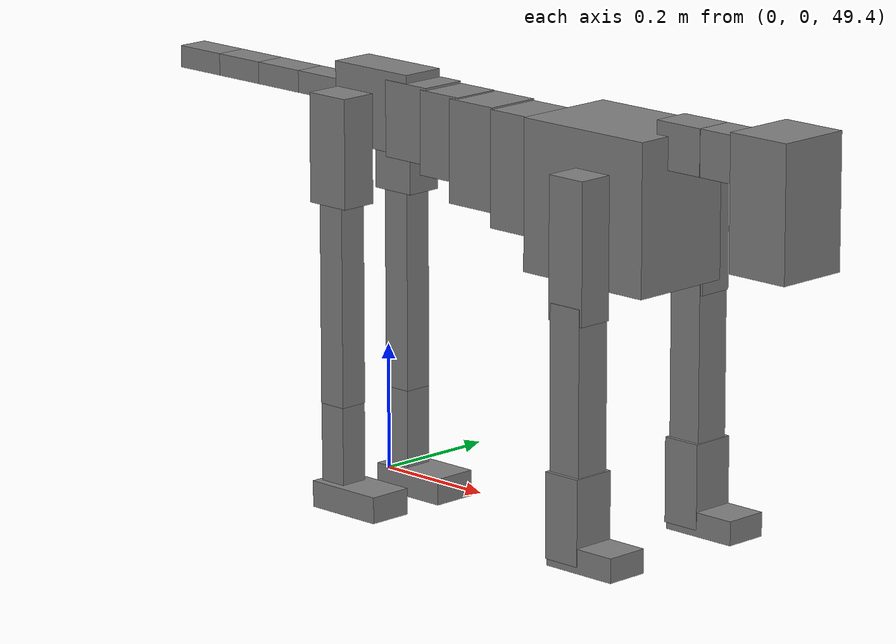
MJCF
<mujoco model="dog">

    <default>
        <joint armature="0.02" stiffness="1" damping="0.2" limited="true"/>
        <geom condim="3" friction="1 0.05 0.05" margin="0.01"/>
        <motor ctrllimited="true" ctrlrange="-1.0 1.0" forcelimited="true" gear="50"/>
    </default>

    <compiler inertiafromgeom="true" angle="radian"/>

    <option timestep="0.016" iterations="50" tolerance="1e-10" solver="Newton" jacobian="dense" cone="pyramidal"/>

    <size nconmax="20000" njmax="60000" nstack="5000000"/>
    <visual>
        <map force="0.1" zfar="30"/>
        <rgba haze="0.15 0.25 0.35 1"/>
        <quality shadowsize="2048"/>
        <global offwidth="800" offheight="800"/>
    </visual>

    <asset>
        <texture type="skybox" builtin="gradient" rgb1="0.3 0.5 0.7" rgb2="0 0 0" width="512" height="512"/>
        <texture name="texplane" type="2d" builtin="checker" rgb1=".2 .3 .4" rgb2=".1 0.15 0.2" width="512" height="512"
                 mark="cross" markrgb=".8 .8 .8"/>
        <texture name="texgeom" type="cube" builtin="flat" mark="cross" width="127" height="1278" rgb1="0.8 0.6 0.4"
                 rgb2="0.8 0.6 0.4" markrgb="1 1 1" random="0.01"/>

        <material name="matplane" reflectance="0.3" texture="texplane" texrepeat="1 1" texuniform="true"/>
        <material name="matgeom" texture="texgeom" texuniform="true" rgba="0.8 0.6 .4 1"/>
    </asset>

    <worldbody>
        <geom name="floor" pos="0 0 0" size="0 0 .25" type="plane" material="matplane" condim="3"/>

        <light directional="false" diffuse=".2 .2 .2" specular="0 0 0" pos="0 0 5" dir="0 0 -1" castshadow="false"/>
        <light mode="targetbodycom" target="torso" directional="false" diffuse=".8 .8 .8" specular="0.3 0.3 0.3"
               pos="0 0 4.0" dir="0 0 -1"/>

        <body name="root" pos="0 0 50">
            <freejoint name="root_1"/>
            <geom type="box" pos="0 0 -0.02" size="0.0774  0.0358  0.063" density="2030"/>

            <body name="spine1" pos="0.054 0 0">
                <joint name="spine1_y" axis="0 1 0" range="0 0.7" limited="true"/>
                <geom type="box" pos="0.02375 0 -0.03" size="0.04375  0.0375  0.05985" density="2030"/>

                <body name="spine2" pos="0.0612 0 0">
                    <joint name="spine2_y" axis="0 1 0" range="-0.15 0.15" limited="true"/>
                    <geom type="box" pos="0.03555  0  -0.04" size="0.04055  0.039  0.06615" density="2030"/>

                    <body name="spine3" pos="0.0730 0 0">
                        <joint name="spine3_y" axis="0 1 0" range="-0.15 0.15" limited="true"/>
                        <geom type="box" pos="0.03555  0  -0.057" size="0.04555  0.0445  0.081" density="2030"/>

                        <body name="spine4" pos="0.0780 0 0">
                            <joint name="spine4_y" axis="0 1 0" range="-0.15 0.15" limited="true"/>
                            <geom type="box" pos="0.05265  0  -0.07" size="0.05265  0.045  0.09135" density="2030"/>

                            <body name="torso" pos="0.1082 0 0">
                                <joint name="torso_y" axis="0 1 0" range="-0.15 0.15" limited="true"/>
                                <geom type="box" pos="0.11925  0  -0.085" size="0.11925  0.085  0.11745"
                                      density="2030"/>

                                <body name="neck1" pos="0.2160  0   0.0180">
                                    <joint name="neck1_y" axis="0 1 0" range="-1.2  -1" limited="true"/>
                                    <geom type="box" pos="0.0423  0  0" size="0.0423  0.03  0.036" density="2325"/>

                                    <body name="neck2" pos="0.0853  0  0">
                                        <joint name="neck2_y" axis="0 1 0" range="0.1  0" limited="true"/>
                                        <geom type="box" pos="0.0423  0  0" size="0.0423  0.03  0.036" density="2325"/>

                                        <body name="head" pos="0.0853  0  0">
                                            <joint name="head_y" axis="0 1 0" range="-0.3  -0.2" limited="true"/>
                                            <geom type="box" pos="0.0531  0  -0.055" size="0.0531  0.06  0.1044"
                                                  density="4030"/>

                                        </body>
                                    </body>
                                </body>

                                <body name="front_shoulder" pos="0.156  0   -0.0480">
                                    <joint name="front_shoulder_y" axis="0 1 0" range="-1 1.5" limited="true"/>
                                    <geom type="box" pos="0 0.13 -0.0825" size="0.0333  0.0284  0.1091" density="1158"/>
                                    <geom type="box" pos="0 -0.13 -0.0825" size="0.0333  0.0284  0.1091"
                                          density="1158"/>

                                    <body name="front_elbow" pos="0  0  -0.1650">
                                        <joint name="front_elbow_y" axis="0 1 0" range="-2 0" limited="true"/>
                                        <geom type="box" pos="0 0.13 -0.1344" size="0.0290  0.0297  0.1344"
                                              density="1081"/>
                                        <geom type="box" pos="0 -0.13 -0.1344" size="0.0290  0.0297  0.1344"
                                              density="1081"/>

                                        <body name="front_wrist" pos="0  0  -0.2688">
                                            <joint name="front_wrist_y" axis="0 1 0" range="-0.2 0" limited="true"/>
                                            <geom type="box" pos="0 0.13 -0.0537" size="0.0322  0.0357  0.0668"
                                                  density="1664"/>
                                            <geom type="box" pos="0 -0.13 -0.0537" size="0.0322  0.0357  0.0668"
                                                  density="1664"/>

                                            <body name="front_finger_end" pos="0  0  -0.1074">
                                                <joint name="front_finger_y" axis="0 1 0" range="-0.4 1"
                                                       limited="true"/>
                                                <geom type="box" pos="0.0354  0.13  -0.0040"
                                                      size="0.0649  0.0354  0.0190" density="1515"/>
                                                <geom type="box" pos="0.0354  -0.13  -0.0040"
                                                      size="0.0649  0.0354  0.0190" density="1515"/>

                                            </body>

                                        </body>
                                    </body>
                                </body>

                            </body>
                        </body>
                    </body>
                </body>
            </body>

            <body name="back_hip" pos="-0.03 0 -0.018">
                <joint name="back_hip_y" axis="0 1 0" range="-1.5 0.3" limited="true"/>
                <geom type="box" pos="0 0.07 -0.0637" size="0.0381  0.0299  0.0865" density="1154"/>
                <geom type="box" pos="0 -0.07 -0.0637" size="0.0381  0.0299  0.0865" density="1154"/>

                <body name="back_knee" pos="0  0  -0.1274">
                    <joint name="back_knee_y" axis="0 1 0" range="0 2.8" limited="true"/>
                    <geom type="box" pos="0 0.07 -0.1630" size="0.0239  0.0236  0.1786" density="1227"/>
                    <geom type="box" pos="0 -0.07 -0.1630" size="0.0239  0.0236  0.1786" density="1227"/>

                    <body name="back_ankle" pos="0  0  -0.3260">
                        <joint name="back_ankle_y" axis="0 1 0" range="-2.2 0" limited="true"/>
                        <geom type="box" pos="0 0.07 -0.0774" size="0.0234  0.0234  0.0887" density="1284"/>
                        <geom type="box" pos="0 -0.07 -0.0774" size="0.0234  0.0234  0.0887" density="1284"/>

                        <body name="back_toe_end" pos="0  0  -0.1548">
                            <joint name="back_toe_y" axis="0 1 0" range="-0.4 1" limited="true"/>
                            <geom type="box" pos="0.0367  0.07  -0.0060" size="0.0672  0.0367  0.0210" density="1515"/>
                            <geom type="box" pos="0.0367  -0.07  -0.0060" size="0.0672  0.0367  0.0210" density="1515"/>

                        </body>
                    </body>
                </body>
            </body>

            <body name="tail1" pos="-0.074 0 -0.006">
                <joint name="tail1_y" axis="0 1 0" range="-0.2 0.2" limited="true"/>
                <geom type="box" pos="-0.0536  0  0" size="0.045  0.025  0.0175" density="1587"/>

                <body name="tail2" pos="-0.09 0 0">
                    <joint name="tail2_y" axis="0 1 0" range="-0.2 0.2" limited="true"/>
                    <geom type="box" pos="-0.0536  0  0" size="0.045  0.025  0.0175" density="1587"/>

                    <body name="tail3" pos="-0.09 0 0">
                        <joint name="tail3_y" axis="0 1 0" range="-0.2 0.2" limited="true"/>
                        <geom type="box" pos="-0.0536  0  0" size="0.045  0.025  0.0175" density="1587"/>

                        <body name="tail4" pos="-0.09 0 0">
                            <joint name="tail4_y" axis="0 1 0" range="-0.2 0.2" limited="true"/>
                            <geom type="box" pos="-0.0536  0  0" size="0.045  0.025  0.0175" density="1587"/>

                        </body>
                    </body>
                </body>
            </body>
        </body>
    </worldbody>

    <actuator>
        <motor joint="spine1_y" forcerange="-150 150     "/>
        <motor joint="spine2_y" forcerange="-150 150     "/>
        <motor joint="spine3_y" forcerange="-150 150     "/>
        <motor joint="spine4_y" forcerange="-150 150     "/>
        <motor joint="torso_y" forcerange="-150 150     "/>
        <motor joint="neck1_y" forcerange="-100 100       "/>
        <motor joint="neck2_y" forcerange="-100 100       "/>
        <motor joint="head_y" forcerange="-150 150       "/>
        <motor joint="front_shoulder_y" forcerange="-110.14 179.52"/>
        <motor joint="front_elbow_y" forcerange="-158.06 157.82"/>
        <motor joint="front_wrist_y" forcerange="-140.33 145.47"/>
        <motor joint="front_finger_y" forcerange="-69.93 78.74"/>
        <motor joint="back_hip_y" forcerange="-253.43 344.60"/>
        <motor joint="back_knee_y" forcerange="-212.79 330.27"/>
        <motor joint="back_angle_y" forcerange="-186.26 88.88"/>
        <motor joint="back_toe_y" forcerange="-123.91 89.48"/>
        <motor joint="tail1_y" forcerange="-50 50     "/>
        <motor joint="tail2_y" forcerange="-50 50     "/>
        <motor joint="tail3_y" forcerange="-50 50     "/>
        <motor joint="tail4_y" forcerange="-50 50     "/>
    </actuator>
</mujoco>
